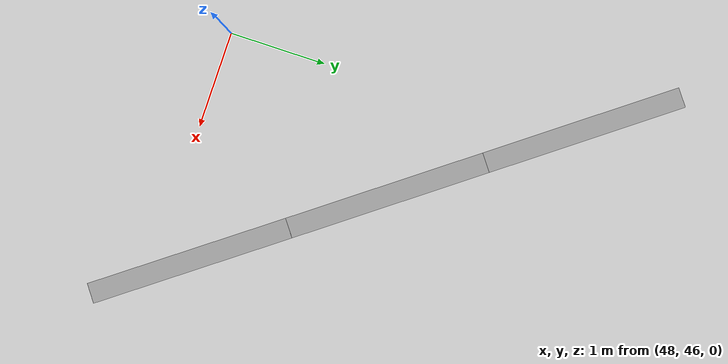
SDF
<?xml version="1.0" ?>
<sdf version="1.6">
  <model name="sps_4138">
    <pose frame="">0 0 0 0 -0 0</pose>
    <static>1</static>
    <self_collide>0</self_collide>
    <allow_auto_disable>0</allow_auto_disable>
    <link name="Wall10323">
      <kinematic>0</kinematic>
      <gravity>1</gravity>
      <self_collide>0</self_collide>
      <collision name="collision">
        <geometry>
          <box>
            <size>1.49648 0.15 2.5</size>
          </box>
        </geometry>
        <pose frame="">0 0 0 0 -0 0</pose>
      </collision>
      <visual name="visual">
        <geometry>
          <box>
            <size>1.49648 0.15 2.5</size>
          </box>
        </geometry>
        <pose frame="">0 0 0 0 -0 0</pose>
        <cast_shadows>1</cast_shadows>
        <transparency>0.0</transparency>
      </visual>
      <pose frame="">49.9647 46.8239 1.25 0 -0 2.20621</pose>
    </link>
    <link name="Wall10324">
      <kinematic>0</kinematic>
      <gravity>1</gravity>
      <self_collide>0</self_collide>
      <collision name="collision">
        <geometry>
          <box>
            <size>1.49617 0.15 2.5</size>
          </box>
        </geometry>
        <pose frame="">0 0 0 0 -0 0</pose>
      </collision>
      <visual name="visual">
        <geometry>
          <box>
            <size>1.49617 0.15 2.5</size>
          </box>
        </geometry>
        <pose frame="">0 0 0 0 -0 0</pose>
        <cast_shadows>1</cast_shadows>
        <transparency>0.0</transparency>
      </visual>
      <pose frame="">49.0753 48.0272 1.25 0 -0 2.2084</pose>
    </link>
    <link name="Wall10325">
      <kinematic>0</kinematic>
      <gravity>1</gravity>
      <self_collide>0</self_collide>
      <collision name="collision">
        <geometry>
          <box>
            <size>1.49663 0.15 2.5</size>
          </box>
        </geometry>
        <pose frame="">0 0 0 0 -0 0</pose>
      </collision>
      <visual name="visual">
        <geometry>
          <box>
            <size>1.49663 0.15 2.5</size>
          </box>
        </geometry>
        <pose frame="">0 0 0 0 -0 0</pose>
        <cast_shadows>1</cast_shadows>
        <transparency>0.0</transparency>
      </visual>
      <pose frame="">48.184 49.2292 1.25 0 -0 2.20929</pose>
    </link>
  </model>
</sdf>
